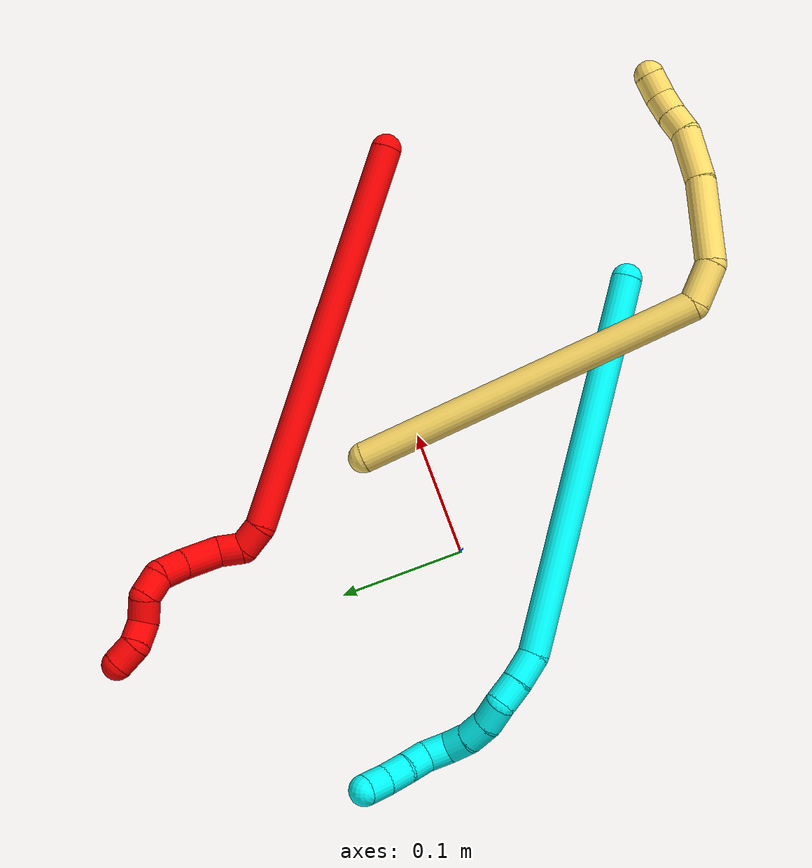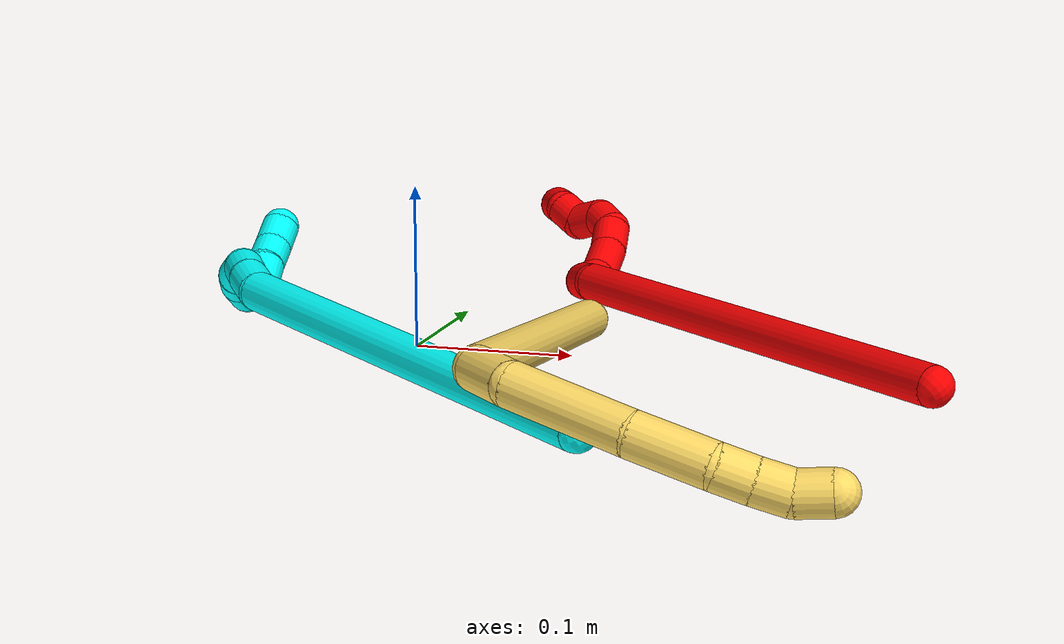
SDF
<sdf version="1.7">
 <world name="default">
  <model name="2">
   <static>0</static>
   <link name="2">
    <collision name="collision-cylinder-e_1_1_4">
     <pose>-0.124993 0.101107 -0.016683 -1.73433 -0.884073 1.01757</pose>
     <geometry><cylinder><radius>0.0125</radius><length>0.323259</length></cylinder></geometry>
     <surface>
      <friction><ode><mu>1.16</mu><mu2>1.16</mu2><slip1>0</slip1><slip2>0</slip2></ode></friction>
      <contact><ode><kp>1e+06</kp><kd>1</kd><max_vel>0</max_vel><min_depth>0.001</min_depth></ode></contact>
     </surface>
    </collision>
    <visual name="visual-cylinder-e_1_1_4">
     <pose>-0.124993 0.101107 -0.016683 -1.73433 -0.884073 1.01757</pose>
     <geometry><cylinder><radius>0.0125</radius><length>0.323259</length></cylinder></geometry>
     <material><ambient>1 0 0 1</ambient></material>
    </visual>
    <collision name="collision-cylinder-e_2_4_5">
     <pose>-0.255522 0.211422 -0.032246 -1.44967 -0.538138 0.479075</pose>
     <geometry><cylinder><radius>0.0125</radius><length>0.021604</length></cylinder></geometry>
     <surface>
      <friction><ode><mu>1.16</mu><mu2>1.16</mu2><slip1>0</slip1><slip2>0</slip2></ode></friction>
      <contact><ode><kp>1e+06</kp><kd>1</kd><max_vel>0</max_vel><min_depth>0.001</min_depth></ode></contact>
     </surface>
    </collision>
    <visual name="visual-cylinder-e_2_4_5">
     <pose>-0.255522 0.211422 -0.032246 -1.44967 -0.538138 0.479075</pose>
     <geometry><cylinder><radius>0.0125</radius><length>0.021604</length></cylinder></geometry>
     <material><ambient>1 0 0 1</ambient></material>
    </visual>
    <collision name="collision-cylinder-e_3_5_6">
     <pose>-0.261735 0.22796 -0.024152 -0.810419 -0.066781 0.028654</pose>
     <geometry><cylinder><radius>0.0125</radius><length>0.020279</length></cylinder></geometry>
     <surface>
      <friction><ode><mu>1.16</mu><mu2>1.16</mu2><slip1>0</slip1><slip2>0</slip2></ode></friction>
      <contact><ode><kp>1e+06</kp><kd>1</kd><max_vel>0</max_vel><min_depth>0.001</min_depth></ode></contact>
     </surface>
    </collision>
    <visual name="visual-cylinder-e_3_5_6">
     <pose>-0.261735 0.22796 -0.024152 -0.810419 -0.066781 0.028654</pose>
     <geometry><cylinder><radius>0.0125</radius><length>0.020279</length></cylinder></geometry>
     <material><ambient>1 0 0 1</ambient></material>
    </visual>
    <collision name="collision-cylinder-e_4_6_7">
     <pose>-0.270036 0.242819 -0.005516 -0.573183 -0.50225 0.15092</pose>
     <geometry><cylinder><radius>0.0125</radius><length>0.031677</length></cylinder></geometry>
     <surface>
      <friction><ode><mu>1.16</mu><mu2>1.16</mu2><slip1>0</slip1><slip2>0</slip2></ode></friction>
      <contact><ode><kp>1e+06</kp><kd>1</kd><max_vel>0</max_vel><min_depth>0.001</min_depth></ode></contact>
     </surface>
    </collision>
    <visual name="visual-cylinder-e_4_6_7">
     <pose>-0.270036 0.242819 -0.005516 -0.573183 -0.50225 0.15092</pose>
     <geometry><cylinder><radius>0.0125</radius><length>0.031677</length></cylinder></geometry>
     <material><ambient>1 0 0 1</ambient></material>
    </visual>
    <collision name="collision-cylinder-e_5_7_8">
     <pose>-0.284496 0.253969 0.014216 -0.421954 -0.658015 0.145978</pose>
     <geometry><cylinder><radius>0.0125</radius><length>0.022355</length></cylinder></geometry>
     <surface>
      <friction><ode><mu>1.16</mu><mu2>1.16</mu2><slip1>0</slip1><slip2>0</slip2></ode></friction>
      <contact><ode><kp>1e+06</kp><kd>1</kd><max_vel>0</max_vel><min_depth>0.001</min_depth></ode></contact>
     </surface>
    </collision>
    <visual name="visual-cylinder-e_5_7_8">
     <pose>-0.284496 0.253969 0.014216 -0.421954 -0.658015 0.145978</pose>
     <geometry><cylinder><radius>0.0125</radius><length>0.022355</length></cylinder></geometry>
     <material><ambient>1 0 0 1</ambient></material>
    </visual>
    <collision name="collision-cylinder-e_6_8_9">
     <pose>-0.299594 0.263244 0.024358 -1.21913 -0.941013 0.682497</pose>
     <geometry><cylinder><radius>0.0125</radius><length>0.020446</length></cylinder></geometry>
     <surface>
      <friction><ode><mu>1.16</mu><mu2>1.16</mu2><slip1>0</slip1><slip2>0</slip2></ode></friction>
      <contact><ode><kp>1e+06</kp><kd>1</kd><max_vel>0</max_vel><min_depth>0.001</min_depth></ode></contact>
     </surface>
    </collision>
    <visual name="visual-cylinder-e_6_8_9">
     <pose>-0.299594 0.263244 0.024358 -1.21913 -0.941013 0.682497</pose>
     <geometry><cylinder><radius>0.0125</radius><length>0.020446</length></cylinder></geometry>
     <material><ambient>1 0 0 1</ambient></material>
    </visual>
    <collision name="collision-cylinder-e_7_9_10">
     <pose>-0.313996 0.275632 0.0219 -2.163 -0.6476 1.12477</pose>
     <geometry><cylinder><radius>0.0125</radius><length>0.020358</length></cylinder></geometry>
     <surface>
      <friction><ode><mu>1.16</mu><mu2>1.16</mu2><slip1>0</slip1><slip2>0</slip2></ode></friction>
      <contact><ode><kp>1e+06</kp><kd>1</kd><max_vel>0</max_vel><min_depth>0.001</min_depth></ode></contact>
     </surface>
    </collision>
    <visual name="visual-cylinder-e_7_9_10">
     <pose>-0.313996 0.275632 0.0219 -2.163 -0.6476 1.12477</pose>
     <geometry><cylinder><radius>0.0125</radius><length>0.020358</length></cylinder></geometry>
     <material><ambient>1 0 0 1</ambient></material>
    </visual>
    <collision name="collision-cylinder-e_8_10_11">
     <pose>-0.329476 0.285881 0.018151 -1.3519 -1.20289 1.00626</pose>
     <geometry><cylinder><radius>0.0125</radius><length>0.020018</length></cylinder></geometry>
     <surface>
      <friction><ode><mu>1.16</mu><mu2>1.16</mu2><slip1>0</slip1><slip2>0</slip2></ode></friction>
      <contact><ode><kp>1e+06</kp><kd>1</kd><max_vel>0</max_vel><min_depth>0.001</min_depth></ode></contact>
     </surface>
    </collision>
    <visual name="visual-cylinder-e_8_10_11">
     <pose>-0.329476 0.285881 0.018151 -1.3519 -1.20289 1.00626</pose>
     <geometry><cylinder><radius>0.0125</radius><length>0.020018</length></cylinder></geometry>
     <material><ambient>1 0 0 1</ambient></material>
    </visual>
    <collision name="collision-cylinder-e_9_11_2">
     <pose>-0.344443 0.297359 0.021159 -1.29822 -0.597587 0.459201</pose>
     <geometry><cylinder><radius>0.0125</radius><length>0.020004</length></cylinder></geometry>
     <surface>
      <friction><ode><mu>1.16</mu><mu2>1.16</mu2><slip1>0</slip1><slip2>0</slip2></ode></friction>
      <contact><ode><kp>1e+06</kp><kd>1</kd><max_vel>0</max_vel><min_depth>0.001</min_depth></ode></contact>
     </surface>
    </collision>
    <visual name="visual-cylinder-e_9_11_2">
     <pose>-0.344443 0.297359 0.021159 -1.29822 -0.597587 0.459201</pose>
     <geometry><cylinder><radius>0.0125</radius><length>0.020004</length></cylinder></geometry>
     <material><ambient>1 0 0 1</ambient></material>
    </visual>
    <collision name="collision-sphere-2">
     <pose>-0.35007 0.305322 0.023385 0 -0 0</pose>
     <geometry><sphere><radius>0.0125</radius></sphere></geometry>
     <surface>
      <friction><ode><mu>1.16</mu><mu2>1.16</mu2><slip1>0</slip1><slip2>0</slip2></ode></friction>
      <contact><ode><kp>1e+06</kp><kd>1</kd><max_vel>0</max_vel><min_depth>0.001</min_depth></ode></contact>
     </surface>
    </collision>
    <visual name="visual-sphere-2">
     <pose>-0.35007 0.305322 0.023385 0 -0 0</pose>
     <geometry><sphere><radius>0.0125</radius></sphere></geometry>
     <material><ambient>1 0 0 1</ambient></material>
    </visual>
    <collision name="collision-sphere-11">
     <pose>-0.338815 0.289395 0.018933 0 -0 0</pose>
     <geometry><sphere><radius>0.0125</radius></sphere></geometry>
     <surface>
      <friction><ode><mu>1.16</mu><mu2>1.16</mu2><slip1>0</slip1><slip2>0</slip2></ode></friction>
      <contact><ode><kp>1e+06</kp><kd>1</kd><max_vel>0</max_vel><min_depth>0.001</min_depth></ode></contact>
     </surface>
    </collision>
    <visual name="visual-sphere-11">
     <pose>-0.338815 0.289395 0.018933 0 -0 0</pose>
     <geometry><sphere><radius>0.0125</radius></sphere></geometry>
     <material><ambient>1 0 0 1</ambient></material>
    </visual>
    <collision name="collision-sphere-10">
     <pose>-0.320137 0.282367 0.017369 0 -0 0</pose>
     <geometry><sphere><radius>0.0125</radius></sphere></geometry>
     <surface>
      <friction><ode><mu>1.16</mu><mu2>1.16</mu2><slip1>0</slip1><slip2>0</slip2></ode></friction>
      <contact><ode><kp>1e+06</kp><kd>1</kd><max_vel>0</max_vel><min_depth>0.001</min_depth></ode></contact>
     </surface>
    </collision>
    <visual name="visual-sphere-10">
     <pose>-0.320137 0.282367 0.017369 0 -0 0</pose>
     <geometry><sphere><radius>0.0125</radius></sphere></geometry>
     <material><ambient>1 0 0 1</ambient></material>
    </visual>
    <collision name="collision-sphere-9">
     <pose>-0.307856 0.268896 0.026432 0 -0 0</pose>
     <geometry><sphere><radius>0.0125</radius></sphere></geometry>
     <surface>
      <friction><ode><mu>1.16</mu><mu2>1.16</mu2><slip1>0</slip1><slip2>0</slip2></ode></friction>
      <contact><ode><kp>1e+06</kp><kd>1</kd><max_vel>0</max_vel><min_depth>0.001</min_depth></ode></contact>
     </surface>
    </collision>
    <visual name="visual-sphere-9">
     <pose>-0.307856 0.268896 0.026432 0 -0 0</pose>
     <geometry><sphere><radius>0.0125</radius></sphere></geometry>
     <material><ambient>1 0 0 1</ambient></material>
    </visual>
    <collision name="collision-sphere-4">
     <pose>-0.249985 0.202214 -0.033366 0 -0 0</pose>
     <geometry><sphere><radius>0.0125</radius></sphere></geometry>
     <surface>
      <friction><ode><mu>1.16</mu><mu2>1.16</mu2><slip1>0</slip1><slip2>0</slip2></ode></friction>
      <contact><ode><kp>1e+06</kp><kd>1</kd><max_vel>0</max_vel><min_depth>0.001</min_depth></ode></contact>
     </surface>
    </collision>
    <visual name="visual-sphere-4">
     <pose>-0.249985 0.202214 -0.033366 0 -0 0</pose>
     <geometry><sphere><radius>0.0125</radius></sphere></geometry>
     <material><ambient>1 0 0 1</ambient></material>
    </visual>
    <collision name="collision-sphere-1">
     <geometry><sphere><radius>0.0125</radius></sphere></geometry>
     <surface>
      <friction><ode><mu>1.16</mu><mu2>1.16</mu2><slip1>0</slip1><slip2>0</slip2></ode></friction>
      <contact><ode><kp>1e+06</kp><kd>1</kd><max_vel>0</max_vel><min_depth>0.001</min_depth></ode></contact>
     </surface>
    </collision>
    <visual name="visual-sphere-1">
     <geometry><sphere><radius>0.0125</radius></sphere></geometry>
     <material><ambient>1 0 0 1</ambient></material>
    </visual>
    <collision name="collision-sphere-8">
     <pose>-0.291332 0.257591 0.022284 0 -0 0</pose>
     <geometry><sphere><radius>0.0125</radius></sphere></geometry>
     <surface>
      <friction><ode><mu>1.16</mu><mu2>1.16</mu2><slip1>0</slip1><slip2>0</slip2></ode></friction>
      <contact><ode><kp>1e+06</kp><kd>1</kd><max_vel>0</max_vel><min_depth>0.001</min_depth></ode></contact>
     </surface>
    </collision>
    <visual name="visual-sphere-8">
     <pose>-0.291332 0.257591 0.022284 0 -0 0</pose>
     <geometry><sphere><radius>0.0125</radius></sphere></geometry>
     <material><ambient>1 0 0 1</ambient></material>
    </visual>
    <collision name="collision-sphere-5">
     <pose>-0.261058 0.220629 -0.031125 0 -0 0</pose>
     <geometry><sphere><radius>0.0125</radius></sphere></geometry>
     <surface>
      <friction><ode><mu>1.16</mu><mu2>1.16</mu2><slip1>0</slip1><slip2>0</slip2></ode></friction>
      <contact><ode><kp>1e+06</kp><kd>1</kd><max_vel>0</max_vel><min_depth>0.001</min_depth></ode></contact>
     </surface>
    </collision>
    <visual name="visual-sphere-5">
     <pose>-0.261058 0.220629 -0.031125 0 -0 0</pose>
     <geometry><sphere><radius>0.0125</radius></sphere></geometry>
     <material><ambient>1 0 0 1</ambient></material>
    </visual>
    <collision name="collision-sphere-6">
     <pose>-0.262412 0.23529 -0.01718 0 -0 0</pose>
     <geometry><sphere><radius>0.0125</radius></sphere></geometry>
     <surface>
      <friction><ode><mu>1.16</mu><mu2>1.16</mu2><slip1>0</slip1><slip2>0</slip2></ode></friction>
      <contact><ode><kp>1e+06</kp><kd>1</kd><max_vel>0</max_vel><min_depth>0.001</min_depth></ode></contact>
     </surface>
    </collision>
    <visual name="visual-sphere-6">
     <pose>-0.262412 0.23529 -0.01718 0 -0 0</pose>
     <geometry><sphere><radius>0.0125</radius></sphere></geometry>
     <material><ambient>1 0 0 1</ambient></material>
    </visual>
    <collision name="collision-sphere-7">
     <pose>-0.277661 0.250347 0.006148 0 -0 0</pose>
     <geometry><sphere><radius>0.0125</radius></sphere></geometry>
     <surface>
      <friction><ode><mu>1.16</mu><mu2>1.16</mu2><slip1>0</slip1><slip2>0</slip2></ode></friction>
      <contact><ode><kp>1e+06</kp><kd>1</kd><max_vel>0</max_vel><min_depth>0.001</min_depth></ode></contact>
     </surface>
    </collision>
    <visual name="visual-sphere-7">
     <pose>-0.277661 0.250347 0.006148 0 -0 0</pose>
     <geometry><sphere><radius>0.0125</radius></sphere></geometry>
     <material><ambient>1 0 0 1</ambient></material>
    </visual>
    <inertial>
     <pose>-0.184301 0.155816 -0.009412 0 -0 0</pose>
     <mass>0.5</mass>
     <inertia>
      <ixx>0.002454</ixx>
      <ixy>0</ixy>
      <ixz>0</ixz>
      <iyy>0.003157</iyy>
      <iyz>0</iyz>
      <izz>0.000419</izz>
     </inertia>
    </inertial>
   </link>
   <pose>0.328069 -0.056168 0.011117 -0.849916 0.619811 -0.322387</pose>
  </model>
  <model name="3">
   <static>0</static>
   <link name="3">
    <collision name="collision-cylinder-e_1_1_4">
     <pose>-0.129201 0.087422 0.005831 -1.5042 -0.974893 0.920778</pose>
     <geometry><cylinder><radius>0.0125</radius><length>0.312215</length></cylinder></geometry>
     <surface>
      <friction><ode><mu>1.16</mu><mu2>1.16</mu2><slip1>0</slip1><slip2>0</slip2></ode></friction>
      <contact><ode><kp>1e+06</kp><kd>1</kd><max_vel>0</max_vel><min_depth>0.001</min_depth></ode></contact>
     </surface>
    </collision>
    <visual name="visual-cylinder-e_1_1_4">
     <pose>-0.129201 0.087422 0.005831 -1.5042 -0.974893 0.920778</pose>
     <geometry><cylinder><radius>0.0125</radius><length>0.312215</length></cylinder></geometry>
     <material><ambient>0.003922 1 0.996078 1</ambient></material>
    </visual>
    <collision name="collision-cylinder-e_2_4_5">
     <pose>-0.266158 0.184376 0.010337 -1.70889 -0.678335 0.770004</pose>
     <geometry><cylinder><radius>0.0125</radius><length>0.024719</length></cylinder></geometry>
     <surface>
      <friction><ode><mu>1.16</mu><mu2>1.16</mu2><slip1>0</slip1><slip2>0</slip2></ode></friction>
      <contact><ode><kp>1e+06</kp><kd>1</kd><max_vel>0</max_vel><min_depth>0.001</min_depth></ode></contact>
     </surface>
    </collision>
    <visual name="visual-cylinder-e_2_4_5">
     <pose>-0.266158 0.184376 0.010337 -1.70889 -0.678335 0.770004</pose>
     <geometry><cylinder><radius>0.0125</radius><length>0.024719</length></cylinder></geometry>
     <material><ambient>0.003922 1 0.996078 1</ambient></material>
    </visual>
    <collision name="collision-cylinder-e_3_5_6">
     <pose>-0.280143 0.202171 0.00688 -1.82337 -0.630574 0.797011</pose>
     <geometry><cylinder><radius>0.0125</radius><length>0.021133</length></cylinder></geometry>
     <surface>
      <friction><ode><mu>1.16</mu><mu2>1.16</mu2><slip1>0</slip1><slip2>0</slip2></ode></friction>
      <contact><ode><kp>1e+06</kp><kd>1</kd><max_vel>0</max_vel><min_depth>0.001</min_depth></ode></contact>
     </surface>
    </collision>
    <visual name="visual-cylinder-e_3_5_6">
     <pose>-0.280143 0.202171 0.00688 -1.82337 -0.630574 0.797011</pose>
     <geometry><cylinder><radius>0.0125</radius><length>0.021133</length></cylinder></geometry>
     <material><ambient>0.003922 1 0.996078 1</ambient></material>
    </visual>
    <collision name="collision-cylinder-e_4_6_7">
     <pose>-0.294159 0.214182 -0.000633 -2.53317 -0.870972 1.9544</pose>
     <geometry><cylinder><radius>0.0125</radius><length>0.020357</length></cylinder></geometry>
     <surface>
      <friction><ode><mu>1.16</mu><mu2>1.16</mu2><slip1>0</slip1><slip2>0</slip2></ode></friction>
      <contact><ode><kp>1e+06</kp><kd>1</kd><max_vel>0</max_vel><min_depth>0.001</min_depth></ode></contact>
     </surface>
    </collision>
    <visual name="visual-cylinder-e_4_6_7">
     <pose>-0.294159 0.214182 -0.000633 -2.53317 -0.870972 1.9544</pose>
     <geometry><cylinder><radius>0.0125</radius><length>0.020357</length></cylinder></geometry>
     <material><ambient>0.003922 1 0.996078 1</ambient></material>
    </visual>
    <collision name="collision-cylinder-e_5_7_8">
     <pose>-0.308012 0.222329 -0.013096 -2.58577 -0.628968 1.70159</pose>
     <geometry><cylinder><radius>0.0125</radius><length>0.020626</length></cylinder></geometry>
     <surface>
      <friction><ode><mu>1.16</mu><mu2>1.16</mu2><slip1>0</slip1><slip2>0</slip2></ode></friction>
      <contact><ode><kp>1e+06</kp><kd>1</kd><max_vel>0</max_vel><min_depth>0.001</min_depth></ode></contact>
     </surface>
    </collision>
    <visual name="visual-cylinder-e_5_7_8">
     <pose>-0.308012 0.222329 -0.013096 -2.58577 -0.628968 1.70159</pose>
     <geometry><cylinder><radius>0.0125</radius><length>0.020626</length></cylinder></geometry>
     <material><ambient>0.003922 1 0.996078 1</ambient></material>
    </visual>
    <collision name="collision-cylinder-e_6_8_9">
     <pose>-0.318188 0.230783 -0.028394 -2.68311 -0.421604 1.48427</pose>
     <geometry><cylinder><radius>0.0125</radius><length>0.02008</length></cylinder></geometry>
     <surface>
      <friction><ode><mu>1.16</mu><mu2>1.16</mu2><slip1>0</slip1><slip2>0</slip2></ode></friction>
      <contact><ode><kp>1e+06</kp><kd>1</kd><max_vel>0</max_vel><min_depth>0.001</min_depth></ode></contact>
     </surface>
    </collision>
    <visual name="visual-cylinder-e_6_8_9">
     <pose>-0.318188 0.230783 -0.028394 -2.68311 -0.421604 1.48427</pose>
     <geometry><cylinder><radius>0.0125</radius><length>0.02008</length></cylinder></geometry>
     <material><ambient>0.003922 1 0.996078 1</ambient></material>
    </visual>
    <collision name="collision-cylinder-e_7_9_10">
     <pose>-0.323848 0.243355 -0.041839 -2.12151 -0.153937 0.273993</pose>
     <geometry><cylinder><radius>0.0125</radius><length>0.020229</length></cylinder></geometry>
     <surface>
      <friction><ode><mu>1.16</mu><mu2>1.16</mu2><slip1>0</slip1><slip2>0</slip2></ode></friction>
      <contact><ode><kp>1e+06</kp><kd>1</kd><max_vel>0</max_vel><min_depth>0.001</min_depth></ode></contact>
     </surface>
    </collision>
    <visual name="visual-cylinder-e_7_9_10">
     <pose>-0.323848 0.243355 -0.041839 -2.12151 -0.153937 0.273993</pose>
     <geometry><cylinder><radius>0.0125</radius><length>0.020229</length></cylinder></geometry>
     <material><ambient>0.003922 1 0.996078 1</ambient></material>
    </visual>
    <collision name="collision-cylinder-e_8_10_11">
     <pose>-0.326145 0.262014 -0.047368 -1.6002 -0.073508 0.075699</pose>
     <geometry><cylinder><radius>0.0125</radius><length>0.020346</length></cylinder></geometry>
     <surface>
      <friction><ode><mu>1.16</mu><mu2>1.16</mu2><slip1>0</slip1><slip2>0</slip2></ode></friction>
      <contact><ode><kp>1e+06</kp><kd>1</kd><max_vel>0</max_vel><min_depth>0.001</min_depth></ode></contact>
     </surface>
    </collision>
    <visual name="visual-cylinder-e_8_10_11">
     <pose>-0.326145 0.262014 -0.047368 -1.6002 -0.073508 0.075699</pose>
     <geometry><cylinder><radius>0.0125</radius><length>0.020346</length></cylinder></geometry>
     <material><ambient>0.003922 1 0.996078 1</ambient></material>
    </visual>
    <collision name="collision-cylinder-e_9_11_12">
     <pose>-0.328113 0.28205 -0.049388 -1.74308 -0.120883 0.143663</pose>
     <geometry><cylinder><radius>0.0125</radius><length>0.020236</length></cylinder></geometry>
     <surface>
      <friction><ode><mu>1.16</mu><mu2>1.16</mu2><slip1>0</slip1><slip2>0</slip2></ode></friction>
      <contact><ode><kp>1e+06</kp><kd>1</kd><max_vel>0</max_vel><min_depth>0.001</min_depth></ode></contact>
     </surface>
    </collision>
    <visual name="visual-cylinder-e_9_11_12">
     <pose>-0.328113 0.28205 -0.049388 -1.74308 -0.120883 0.143663</pose>
     <geometry><cylinder><radius>0.0125</radius><length>0.020236</length></cylinder></geometry>
     <material><ambient>0.003922 1 0.996078 1</ambient></material>
    </visual>
    <collision name="collision-cylinder-e_10_12_2">
     <pose>-0.329119 0.301967 -0.051474 -1.60708 0.021306 -0.022093</pose>
     <geometry><cylinder><radius>0.0125</radius><length>0.02006</length></cylinder></geometry>
     <surface>
      <friction><ode><mu>1.16</mu><mu2>1.16</mu2><slip1>0</slip1><slip2>0</slip2></ode></friction>
      <contact><ode><kp>1e+06</kp><kd>1</kd><max_vel>0</max_vel><min_depth>0.001</min_depth></ode></contact>
     </surface>
    </collision>
    <visual name="visual-cylinder-e_10_12_2">
     <pose>-0.329119 0.301967 -0.051474 -1.60708 0.021306 -0.022093</pose>
     <geometry><cylinder><radius>0.0125</radius><length>0.02006</length></cylinder></geometry>
     <material><ambient>0.003922 1 0.996078 1</ambient></material>
    </visual>
    <collision name="collision-sphere-2">
     <pose>-0.328906 0.311988 -0.051838 0 -0 0</pose>
     <geometry><sphere><radius>0.0125</radius></sphere></geometry>
     <surface>
      <friction><ode><mu>1.16</mu><mu2>1.16</mu2><slip1>0</slip1><slip2>0</slip2></ode></friction>
      <contact><ode><kp>1e+06</kp><kd>1</kd><max_vel>0</max_vel><min_depth>0.001</min_depth></ode></contact>
     </surface>
    </collision>
    <visual name="visual-sphere-2">
     <pose>-0.328906 0.311988 -0.051838 0 -0 0</pose>
     <geometry><sphere><radius>0.0125</radius></sphere></geometry>
     <material><ambient>0.003922 1 0.996078 1</ambient></material>
    </visual>
    <collision name="collision-sphere-12">
     <pose>-0.329333 0.291946 -0.05111 0 -0 0</pose>
     <geometry><sphere><radius>0.0125</radius></sphere></geometry>
     <surface>
      <friction><ode><mu>1.16</mu><mu2>1.16</mu2><slip1>0</slip1><slip2>0</slip2></ode></friction>
      <contact><ode><kp>1e+06</kp><kd>1</kd><max_vel>0</max_vel><min_depth>0.001</min_depth></ode></contact>
     </surface>
    </collision>
    <visual name="visual-sphere-12">
     <pose>-0.329333 0.291946 -0.05111 0 -0 0</pose>
     <geometry><sphere><radius>0.0125</radius></sphere></geometry>
     <material><ambient>0.003922 1 0.996078 1</ambient></material>
    </visual>
    <collision name="collision-sphere-11">
     <pose>-0.326893 0.272155 -0.047666 0 -0 0</pose>
     <geometry><sphere><radius>0.0125</radius></sphere></geometry>
     <surface>
      <friction><ode><mu>1.16</mu><mu2>1.16</mu2><slip1>0</slip1><slip2>0</slip2></ode></friction>
      <contact><ode><kp>1e+06</kp><kd>1</kd><max_vel>0</max_vel><min_depth>0.001</min_depth></ode></contact>
     </surface>
    </collision>
    <visual name="visual-sphere-11">
     <pose>-0.326893 0.272155 -0.047666 0 -0 0</pose>
     <geometry><sphere><radius>0.0125</radius></sphere></geometry>
     <material><ambient>0.003922 1 0.996078 1</ambient></material>
    </visual>
    <collision name="collision-sphere-10">
     <pose>-0.325398 0.251873 -0.04707 0 -0 0</pose>
     <geometry><sphere><radius>0.0125</radius></sphere></geometry>
     <surface>
      <friction><ode><mu>1.16</mu><mu2>1.16</mu2><slip1>0</slip1><slip2>0</slip2></ode></friction>
      <contact><ode><kp>1e+06</kp><kd>1</kd><max_vel>0</max_vel><min_depth>0.001</min_depth></ode></contact>
     </surface>
    </collision>
    <visual name="visual-sphere-10">
     <pose>-0.325398 0.251873 -0.04707 0 -0 0</pose>
     <geometry><sphere><radius>0.0125</radius></sphere></geometry>
     <material><ambient>0.003922 1 0.996078 1</ambient></material>
    </visual>
    <collision name="collision-sphere-9">
     <pose>-0.322297 0.234838 -0.036609 0 -0 0</pose>
     <geometry><sphere><radius>0.0125</radius></sphere></geometry>
     <surface>
      <friction><ode><mu>1.16</mu><mu2>1.16</mu2><slip1>0</slip1><slip2>0</slip2></ode></friction>
      <contact><ode><kp>1e+06</kp><kd>1</kd><max_vel>0</max_vel><min_depth>0.001</min_depth></ode></contact>
     </surface>
    </collision>
    <visual name="visual-sphere-9">
     <pose>-0.322297 0.234838 -0.036609 0 -0 0</pose>
     <geometry><sphere><radius>0.0125</radius></sphere></geometry>
     <material><ambient>0.003922 1 0.996078 1</ambient></material>
    </visual>
    <collision name="collision-sphere-4">
     <pose>-0.258402 0.174844 0.011662 0 -0 0</pose>
     <geometry><sphere><radius>0.0125</radius></sphere></geometry>
     <surface>
      <friction><ode><mu>1.16</mu><mu2>1.16</mu2><slip1>0</slip1><slip2>0</slip2></ode></friction>
      <contact><ode><kp>1e+06</kp><kd>1</kd><max_vel>0</max_vel><min_depth>0.001</min_depth></ode></contact>
     </surface>
    </collision>
    <visual name="visual-sphere-4">
     <pose>-0.258402 0.174844 0.011662 0 -0 0</pose>
     <geometry><sphere><radius>0.0125</radius></sphere></geometry>
     <material><ambient>0.003922 1 0.996078 1</ambient></material>
    </visual>
    <collision name="collision-sphere-1">
     <geometry><sphere><radius>0.0125</radius></sphere></geometry>
     <surface>
      <friction><ode><mu>1.16</mu><mu2>1.16</mu2><slip1>0</slip1><slip2>0</slip2></ode></friction>
      <contact><ode><kp>1e+06</kp><kd>1</kd><max_vel>0</max_vel><min_depth>0.001</min_depth></ode></contact>
     </surface>
    </collision>
    <visual name="visual-sphere-1">
     <geometry><sphere><radius>0.0125</radius></sphere></geometry>
     <material><ambient>0.003922 1 0.996078 1</ambient></material>
    </visual>
    <collision name="collision-sphere-8">
     <pose>-0.31408 0.226729 -0.02018 0 -0 0</pose>
     <geometry><sphere><radius>0.0125</radius></sphere></geometry>
     <surface>
      <friction><ode><mu>1.16</mu><mu2>1.16</mu2><slip1>0</slip1><slip2>0</slip2></ode></friction>
      <contact><ode><kp>1e+06</kp><kd>1</kd><max_vel>0</max_vel><min_depth>0.001</min_depth></ode></contact>
     </surface>
    </collision>
    <visual name="visual-sphere-8">
     <pose>-0.31408 0.226729 -0.02018 0 -0 0</pose>
     <geometry><sphere><radius>0.0125</radius></sphere></geometry>
     <material><ambient>0.003922 1 0.996078 1</ambient></material>
    </visual>
    <collision name="collision-sphere-5">
     <pose>-0.273913 0.193907 0.009012 0 -0 0</pose>
     <geometry><sphere><radius>0.0125</radius></sphere></geometry>
     <surface>
      <friction><ode><mu>1.16</mu><mu2>1.16</mu2><slip1>0</slip1><slip2>0</slip2></ode></friction>
      <contact><ode><kp>1e+06</kp><kd>1</kd><max_vel>0</max_vel><min_depth>0.001</min_depth></ode></contact>
     </surface>
    </collision>
    <visual name="visual-sphere-5">
     <pose>-0.273913 0.193907 0.009012 0 -0 0</pose>
     <geometry><sphere><radius>0.0125</radius></sphere></geometry>
     <material><ambient>0.003922 1 0.996078 1</ambient></material>
    </visual>
    <collision name="collision-sphere-6">
     <pose>-0.286373 0.210434 0.004747 0 -0 0</pose>
     <geometry><sphere><radius>0.0125</radius></sphere></geometry>
     <surface>
      <friction><ode><mu>1.16</mu><mu2>1.16</mu2><slip1>0</slip1><slip2>0</slip2></ode></friction>
      <contact><ode><kp>1e+06</kp><kd>1</kd><max_vel>0</max_vel><min_depth>0.001</min_depth></ode></contact>
     </surface>
    </collision>
    <visual name="visual-sphere-6">
     <pose>-0.286373 0.210434 0.004747 0 -0 0</pose>
     <geometry><sphere><radius>0.0125</radius></sphere></geometry>
     <material><ambient>0.003922 1 0.996078 1</ambient></material>
    </visual>
    <collision name="collision-sphere-7">
     <pose>-0.301945 0.217929 -0.006012 0 -0 0</pose>
     <geometry><sphere><radius>0.0125</radius></sphere></geometry>
     <surface>
      <friction><ode><mu>1.16</mu><mu2>1.16</mu2><slip1>0</slip1><slip2>0</slip2></ode></friction>
      <contact><ode><kp>1e+06</kp><kd>1</kd><max_vel>0</max_vel><min_depth>0.001</min_depth></ode></contact>
     </surface>
    </collision>
    <visual name="visual-sphere-7">
     <pose>-0.301945 0.217929 -0.006012 0 -0 0</pose>
     <geometry><sphere><radius>0.0125</radius></sphere></geometry>
     <material><ambient>0.003922 1 0.996078 1</ambient></material>
    </visual>
    <inertial>
     <pose>-0.195994 0.143446 -0.004948 0 -0 0</pose>
     <mass>0.5</mass>
     <inertia>
      <ixx>0.001992</ixx>
      <ixy>0</ixy>
      <ixz>0</ixz>
      <iyy>0.002949</iyy>
      <iyz>0</iyz>
      <izz>0.000673</izz>
     </inertia>
    </inertial>
   </link>
   <pose>0.160418 -0.201795 0.012488 0.67107 -0.35213 -0.176699</pose>
  </model>
  <model name="5">
   <static>0</static>
   <link name="5">
    <collision name="collision-cylinder-e_1_1_4">
     <pose>-0.01083 -0.043863 0.136787 0.310309 -0.07525 -0.011775</pose>
     <geometry><cylinder><radius>0.0125</radius><length>0.288111</length></cylinder></geometry>
     <surface>
      <friction><ode><mu>1.16</mu><mu2>1.16</mu2><slip1>0</slip1><slip2>0</slip2></ode></friction>
      <contact><ode><kp>1e+06</kp><kd>1</kd><max_vel>0</max_vel><min_depth>0.001</min_depth></ode></contact>
     </surface>
    </collision>
    <visual name="visual-cylinder-e_1_1_4">
     <pose>-0.01083 -0.043863 0.136787 0.310309 -0.07525 -0.011775</pose>
     <geometry><cylinder><radius>0.0125</radius><length>0.288111</length></cylinder></geometry>
     <material><ambient>1 0.858824 0.4 1</ambient></material>
    </visual>
    <collision name="collision-cylinder-e_2_4_5">
     <pose>-0.011014 -0.095072 0.285598 0.548375 0.647049 0.188068</pose>
     <geometry><cylinder><radius>0.0125</radius><length>0.03532</length></cylinder></geometry>
     <surface>
      <friction><ode><mu>1.16</mu><mu2>1.16</mu2><slip1>0</slip1><slip2>0</slip2></ode></friction>
      <contact><ode><kp>1e+06</kp><kd>1</kd><max_vel>0</max_vel><min_depth>0.001</min_depth></ode></contact>
     </surface>
    </collision>
    <visual name="visual-cylinder-e_2_4_5">
     <pose>-0.011014 -0.095072 0.285598 0.548375 0.647049 0.188068</pose>
     <geometry><cylinder><radius>0.0125</radius><length>0.03532</length></cylinder></geometry>
     <material><ambient>1 0.858824 0.4 1</ambient></material>
    </visual>
    <collision name="collision-cylinder-e_3_5_6">
     <pose>0.030505 -0.118653 0.306422 1.07413 1.03172 0.651281</pose>
     <geometry><cylinder><radius>0.0125</radius><length>0.07195</length></cylinder></geometry>
     <surface>
      <friction><ode><mu>1.16</mu><mu2>1.16</mu2><slip1>0</slip1><slip2>0</slip2></ode></friction>
      <contact><ode><kp>1e+06</kp><kd>1</kd><max_vel>0</max_vel><min_depth>0.001</min_depth></ode></contact>
     </surface>
    </collision>
    <visual name="visual-cylinder-e_3_5_6">
     <pose>0.030505 -0.118653 0.306422 1.07413 1.03172 0.651281</pose>
     <geometry><cylinder><radius>0.0125</radius><length>0.07195</length></cylinder></geometry>
     <material><ambient>1 0.858824 0.4 1</ambient></material>
    </visual>
    <collision name="collision-cylinder-e_4_6_7">
     <pose>0.081291 -0.144361 0.317231 1.36181 1.11824 0.93836</pose>
     <geometry><cylinder><radius>0.0125</radius><length>0.044284</length></cylinder></geometry>
     <surface>
      <friction><ode><mu>1.16</mu><mu2>1.16</mu2><slip1>0</slip1><slip2>0</slip2></ode></friction>
      <contact><ode><kp>1e+06</kp><kd>1</kd><max_vel>0</max_vel><min_depth>0.001</min_depth></ode></contact>
     </surface>
    </collision>
    <visual name="visual-cylinder-e_4_6_7">
     <pose>0.081291 -0.144361 0.317231 1.36181 1.11824 0.93836</pose>
     <geometry><cylinder><radius>0.0125</radius><length>0.044284</length></cylinder></geometry>
     <material><ambient>1 0.858824 0.4 1</ambient></material>
    </visual>
    <collision name="collision-cylinder-e_5_7_8">
     <pose>0.110384 -0.15759 0.317056 2.0972 1.12864 1.66589</pose>
     <geometry><cylinder><radius>0.0125</radius><length>0.020314</length></cylinder></geometry>
     <surface>
      <friction><ode><mu>1.16</mu><mu2>1.16</mu2><slip1>0</slip1><slip2>0</slip2></ode></friction>
      <contact><ode><kp>1e+06</kp><kd>1</kd><max_vel>0</max_vel><min_depth>0.001</min_depth></ode></contact>
     </surface>
    </collision>
    <visual name="visual-cylinder-e_5_7_8">
     <pose>0.110384 -0.15759 0.317056 2.0972 1.12864 1.66589</pose>
     <geometry><cylinder><radius>0.0125</radius><length>0.020314</length></cylinder></geometry>
     <material><ambient>1 0.858824 0.4 1</ambient></material>
    </visual>
    <collision name="collision-cylinder-e_6_8_9">
     <pose>0.128868 -0.164794 0.313566 1.93324 1.19358 1.55496</pose>
     <geometry><cylinder><radius>0.0125</radius><length>0.020014</length></cylinder></geometry>
     <surface>
      <friction><ode><mu>1.16</mu><mu2>1.16</mu2><slip1>0</slip1><slip2>0</slip2></ode></friction>
      <contact><ode><kp>1e+06</kp><kd>1</kd><max_vel>0</max_vel><min_depth>0.001</min_depth></ode></contact>
     </surface>
    </collision>
    <visual name="visual-cylinder-e_6_8_9">
     <pose>0.128868 -0.164794 0.313566 1.93324 1.19358 1.55496</pose>
     <geometry><cylinder><radius>0.0125</radius><length>0.020014</length></cylinder></geometry>
     <material><ambient>1 0.858824 0.4 1</ambient></material>
    </visual>
    <collision name="collision-cylinder-e_7_9_2">
     <pose>0.14816 -0.168683 0.312585 0.93614 1.51581 0.892568</pose>
     <geometry><cylinder><radius>0.0125</radius><length>0.020008</length></cylinder></geometry>
     <surface>
      <friction><ode><mu>1.16</mu><mu2>1.16</mu2><slip1>0</slip1><slip2>0</slip2></ode></friction>
      <contact><ode><kp>1e+06</kp><kd>1</kd><max_vel>0</max_vel><min_depth>0.001</min_depth></ode></contact>
     </surface>
    </collision>
    <visual name="visual-cylinder-e_7_9_2">
     <pose>0.14816 -0.168683 0.312585 0.93614 1.51581 0.892568</pose>
     <geometry><cylinder><radius>0.0125</radius><length>0.020008</length></cylinder></geometry>
     <material><ambient>1 0.858824 0.4 1</ambient></material>
    </visual>
    <collision name="collision-sphere-2">
     <pose>0.158149 -0.169126 0.312911 0 -0 0</pose>
     <geometry><sphere><radius>0.0125</radius></sphere></geometry>
     <surface>
      <friction><ode><mu>1.16</mu><mu2>1.16</mu2><slip1>0</slip1><slip2>0</slip2></ode></friction>
      <contact><ode><kp>1e+06</kp><kd>1</kd><max_vel>0</max_vel><min_depth>0.001</min_depth></ode></contact>
     </surface>
    </collision>
    <visual name="visual-sphere-2">
     <pose>0.158149 -0.169126 0.312911 0 -0 0</pose>
     <geometry><sphere><radius>0.0125</radius></sphere></geometry>
     <material><ambient>1 0.858824 0.4 1</ambient></material>
    </visual>
    <collision name="collision-sphere-9">
     <pose>0.138171 -0.16824 0.312259 0 -0 0</pose>
     <geometry><sphere><radius>0.0125</radius></sphere></geometry>
     <surface>
      <friction><ode><mu>1.16</mu><mu2>1.16</mu2><slip1>0</slip1><slip2>0</slip2></ode></friction>
      <contact><ode><kp>1e+06</kp><kd>1</kd><max_vel>0</max_vel><min_depth>0.001</min_depth></ode></contact>
     </surface>
    </collision>
    <visual name="visual-sphere-9">
     <pose>0.138171 -0.16824 0.312259 0 -0 0</pose>
     <geometry><sphere><radius>0.0125</radius></sphere></geometry>
     <material><ambient>1 0.858824 0.4 1</ambient></material>
    </visual>
    <collision name="collision-sphere-4">
     <pose>-0.02166 -0.087726 0.273574 0 -0 0</pose>
     <geometry><sphere><radius>0.0125</radius></sphere></geometry>
     <surface>
      <friction><ode><mu>1.16</mu><mu2>1.16</mu2><slip1>0</slip1><slip2>0</slip2></ode></friction>
      <contact><ode><kp>1e+06</kp><kd>1</kd><max_vel>0</max_vel><min_depth>0.001</min_depth></ode></contact>
     </surface>
    </collision>
    <visual name="visual-sphere-4">
     <pose>-0.02166 -0.087726 0.273574 0 -0 0</pose>
     <geometry><sphere><radius>0.0125</radius></sphere></geometry>
     <material><ambient>1 0.858824 0.4 1</ambient></material>
    </visual>
    <collision name="collision-sphere-1">
     <geometry><sphere><radius>0.0125</radius></sphere></geometry>
     <surface>
      <friction><ode><mu>1.16</mu><mu2>1.16</mu2><slip1>0</slip1><slip2>0</slip2></ode></friction>
      <contact><ode><kp>1e+06</kp><kd>1</kd><max_vel>0</max_vel><min_depth>0.001</min_depth></ode></contact>
     </surface>
    </collision>
    <visual name="visual-sphere-1">
     <geometry><sphere><radius>0.0125</radius></sphere></geometry>
     <material><ambient>1 0.858824 0.4 1</ambient></material>
    </visual>
    <collision name="collision-sphere-8">
     <pose>0.119564 -0.161348 0.314873 0 -0 0</pose>
     <geometry><sphere><radius>0.0125</radius></sphere></geometry>
     <surface>
      <friction><ode><mu>1.16</mu><mu2>1.16</mu2><slip1>0</slip1><slip2>0</slip2></ode></friction>
      <contact><ode><kp>1e+06</kp><kd>1</kd><max_vel>0</max_vel><min_depth>0.001</min_depth></ode></contact>
     </surface>
    </collision>
    <visual name="visual-sphere-8">
     <pose>0.119564 -0.161348 0.314873 0 -0 0</pose>
     <geometry><sphere><radius>0.0125</radius></sphere></geometry>
     <material><ambient>1 0.858824 0.4 1</ambient></material>
    </visual>
    <collision name="collision-sphere-5">
     <pose>-0.000368 -0.102417 0.297622 0 -0 0</pose>
     <geometry><sphere><radius>0.0125</radius></sphere></geometry>
     <surface>
      <friction><ode><mu>1.16</mu><mu2>1.16</mu2><slip1>0</slip1><slip2>0</slip2></ode></friction>
      <contact><ode><kp>1e+06</kp><kd>1</kd><max_vel>0</max_vel><min_depth>0.001</min_depth></ode></contact>
     </surface>
    </collision>
    <visual name="visual-sphere-5">
     <pose>-0.000368 -0.102417 0.297622 0 -0 0</pose>
     <geometry><sphere><radius>0.0125</radius></sphere></geometry>
     <material><ambient>1 0.858824 0.4 1</ambient></material>
    </visual>
    <collision name="collision-sphere-6">
     <pose>0.061378 -0.13489 0.315222 0 -0 0</pose>
     <geometry><sphere><radius>0.0125</radius></sphere></geometry>
     <surface>
      <friction><ode><mu>1.16</mu><mu2>1.16</mu2><slip1>0</slip1><slip2>0</slip2></ode></friction>
      <contact><ode><kp>1e+06</kp><kd>1</kd><max_vel>0</max_vel><min_depth>0.001</min_depth></ode></contact>
     </surface>
    </collision>
    <visual name="visual-sphere-6">
     <pose>0.061378 -0.13489 0.315222 0 -0 0</pose>
     <geometry><sphere><radius>0.0125</radius></sphere></geometry>
     <material><ambient>1 0.858824 0.4 1</ambient></material>
    </visual>
    <collision name="collision-sphere-7">
     <pose>0.101204 -0.153832 0.31924 0 -0 0</pose>
     <geometry><sphere><radius>0.0125</radius></sphere></geometry>
     <surface>
      <friction><ode><mu>1.16</mu><mu2>1.16</mu2><slip1>0</slip1><slip2>0</slip2></ode></friction>
      <contact><ode><kp>1e+06</kp><kd>1</kd><max_vel>0</max_vel><min_depth>0.001</min_depth></ode></contact>
     </surface>
    </collision>
    <visual name="visual-sphere-7">
     <pose>0.101204 -0.153832 0.31924 0 -0 0</pose>
     <geometry><sphere><radius>0.0125</radius></sphere></geometry>
     <material><ambient>1 0.858824 0.4 1</ambient></material>
    </visual>
    <inertial>
     <pose>0.020143 -0.0816 0.209126 0 -0 0</pose>
     <mass>0.5</mass>
     <inertia>
      <ixx>0.002023</ixx>
      <ixy>0</ixy>
      <ixz>0</ixz>
      <iyy>0.001932</iyy>
      <iyz>0</iyz>
      <izz>0.000763</izz>
     </inertia>
    </inertial>
   </link>
   <pose>0.097536 0.047043 0.012302 1.11475 -0.098745 0.159925</pose>
  </model>
 </world>
</sdf>
